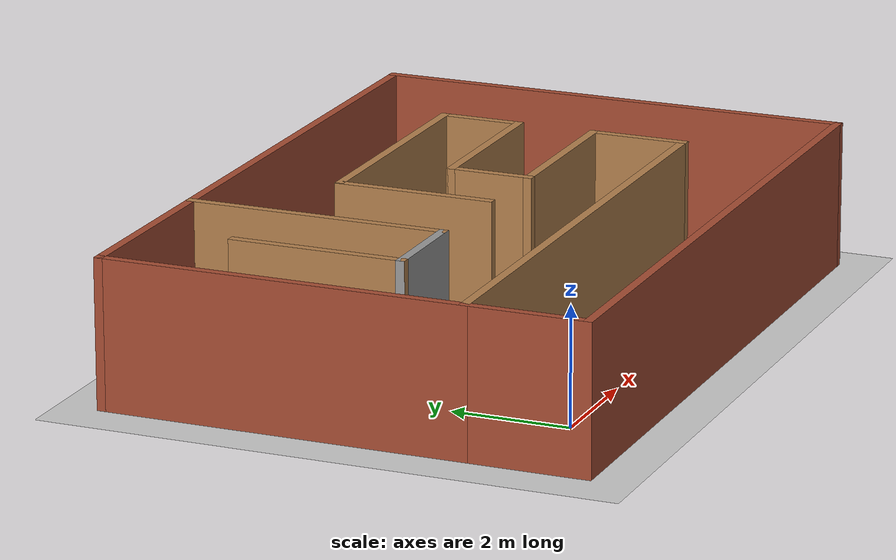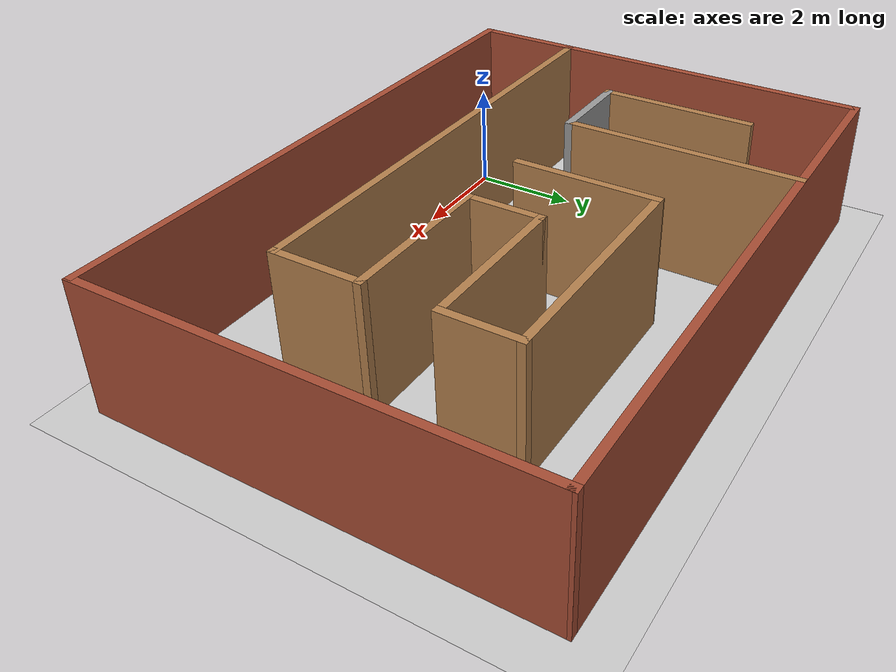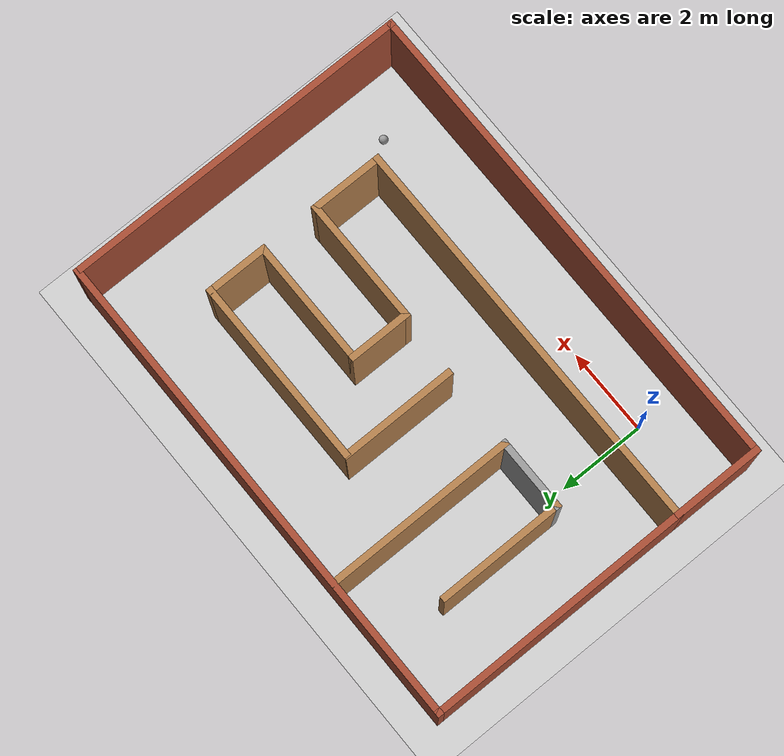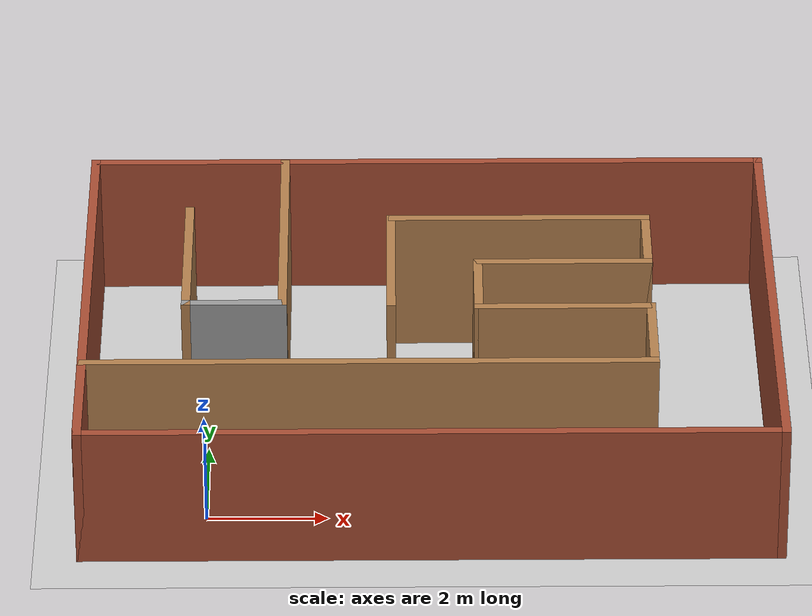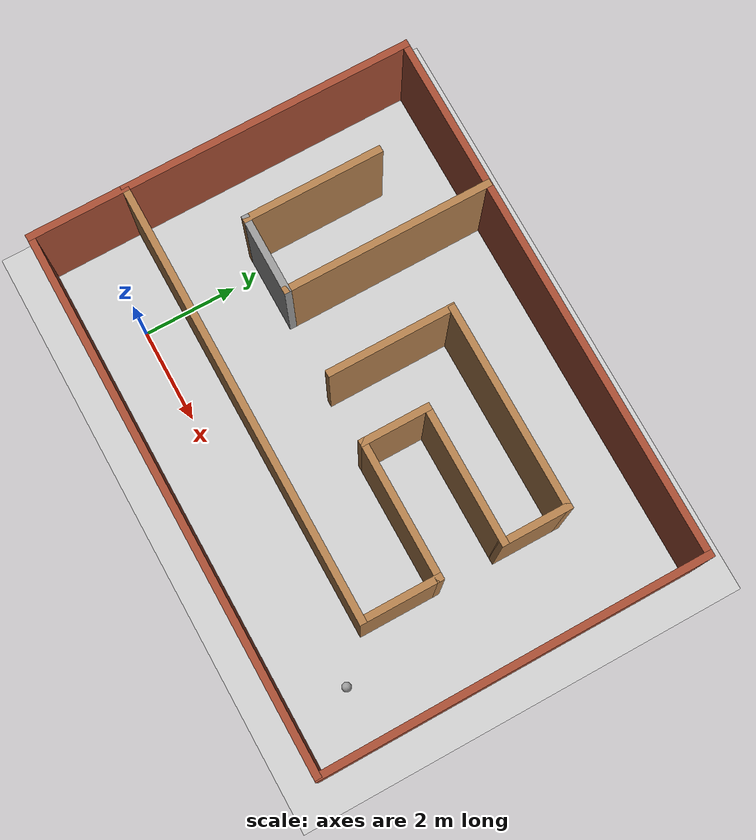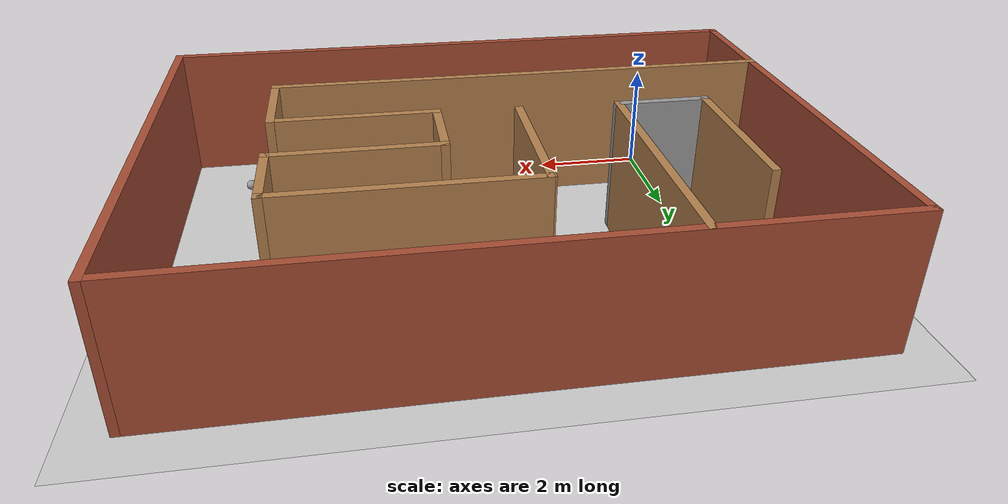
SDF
<sdf version="1.6">
 <world name="default">
  <light name="sun" type="directional">
   <pose>0 0 10 0 -0 0</pose>
   <diffuse>0.8 0.8 0.8 1</diffuse>
   <specular>0.1 0.1 0.1 1</specular>
   <attenuation>
    <range>1000</range>
    <constant>0.9</constant>
    <linear>0.01</linear>
    <quadratic>0.001</quadratic>
   </attenuation>
   <direction>-0.5 0.5 -1</direction>
  </light>
  <model name="ground_plane">
   <static>1</static>
   <link name="link">
    <collision name="collision">
     <geometry><plane><normal>0 0 1</normal><size>100 100</size></plane></geometry>
     <surface><friction><ode><mu>100</mu><mu2>50</mu2></ode></friction></surface>
    </collision>
    <visual name="visual">
     <cast_shadows>0</cast_shadows>
     <geometry><plane><normal>0 0 1</normal><size>100 100</size></plane></geometry>
     <material>
      <script><uri>file://media/materials/scripts/gazebo.material</uri><name>Gazebo/Grey</name></script>
     </material>
    </visual>
   </link>
  </model>
  <gravity>0 0 -9.8</gravity>
  <magnetic_field>6e-06 2.3e-05 -4.2e-05</magnetic_field>
  <atmosphere type="adiabatic"/>
  <physics name="default_physics" default="0" type="ode">
   <max_step_size>0.001</max_step_size>
   <real_time_factor>1</real_time_factor>
   <real_time_update_rate>1000</real_time_update_rate>
  </physics>
  <scene><ambient>0.4 0.4 0.4 1</ambient><background>0.7 0.7 0.7 1</background><shadows>1</shadows></scene>
  <spherical_coordinates>
   <surface_model>EARTH_WGS84</surface_model>
   <latitude_deg>0</latitude_deg>
   <longitude_deg>0</longitude_deg>
   <elevation>0</elevation>
   <heading_deg>0</heading_deg>
  </spherical_coordinates>
  <model name="maze">
   <pose>3.68088 2.96887 0 0 -0 0</pose>
   <link name="Wall_1">
    <collision name="Wall_1_Collision">
     <geometry><box><size>11.5 0.15 2.5</size></box></geometry>
     <pose>0 0 1.25 0 -0 0</pose>
    </collision>
    <visual name="Wall_1_Visual">
     <pose>0 0 1.25 0 -0 0</pose>
     <geometry><box><size>11.5 0.15 2.5</size></box></geometry>
     <material>
      <script><uri>file://media/materials/scripts/gazebo.material</uri><name>Gazebo/Bricks</name></script>
      <ambient>1 1 1 1</ambient>
     </material>
     <meta><layer>0</layer></meta>
    </visual>
    <pose>-0.015139 -4.055 0 0 -0 0</pose>
   </link>
   <link name="Wall_10">
    <collision name="Wall_10_Collision">
     <geometry><box><size>1.5 0.15 2.5</size></box></geometry>
     <pose>0 0 1.25 0 -0 0</pose>
    </collision>
    <visual name="Wall_10_Visual">
     <pose>0 0 1.25 0 -0 0</pose>
     <geometry><box><size>1.5 0.15 2.5</size></box></geometry>
     <material>
      <script><uri>file://media/materials/scripts/gazebo.material</uri><name>Gazebo/Wood</name></script>
      <ambient>1 1 1 1</ambient>
     </material>
     <meta><layer>0</layer></meta>
    </visual>
    <pose>3.65986 1.58 0 0 -0 1.5708</pose>
   </link>
   <link name="Wall_11">
    <collision name="Wall_11_Collision">
     <geometry><box><size>4.42 0.15 2.5</size></box></geometry>
     <pose>0 0 1.25 0 -0 0</pose>
    </collision>
    <visual name="Wall_11_Visual">
     <pose>0 0 1.25 0 -0 0</pose>
     <geometry><box><size>4.42 0.15 2.5</size></box></geometry>
     <material>
      <script><uri>file://media/materials/scripts/gazebo.material</uri><name>Gazebo/Wood</name></script>
      <ambient>1 1 1 1</ambient>
     </material>
     <meta><layer>0</layer></meta>
    </visual>
    <pose>1.52486 2.255 0 0 -0 3.14159</pose>
   </link>
   <link name="Wall_12">
    <collision name="Wall_12_Collision">
     <geometry><box><size>2.75 0.15 2.5</size></box></geometry>
     <pose>0 0 1.25 0 -0 0</pose>
    </collision>
    <visual name="Wall_12_Visual">
     <pose>0 0 1.25 0 -0 0</pose>
     <geometry><box><size>2.75 0.15 2.5</size></box></geometry>
     <material>
      <script><uri>file://media/materials/scripts/gazebo.material</uri><name>Gazebo/Wood</name></script>
      <ambient>1 1 1 1</ambient>
     </material>
     <meta><layer>0</layer></meta>
    </visual>
    <pose>-0.640139 0.955 0 0 0 -1.5708</pose>
   </link>
   <link name="Wall_14">
    <collision name="Wall_14_Collision">
     <geometry><box><size>4.5 0.15 2.5</size></box></geometry>
     <pose>0 0 1.25 0 -0 0</pose>
    </collision>
    <visual name="Wall_14_Visual">
     <pose>0 0 1.25 0 -0 0</pose>
     <geometry><box><size>4.5 0.15 2.5</size></box></geometry>
     <material>
      <script><uri>file://media/materials/scripts/gazebo.material</uri><name>Gazebo/Wood</name></script>
      <ambient>1 1 1 1</ambient>
     </material>
     <meta><layer>0</layer></meta>
    </visual>
    <pose>-2.44014 1.87 0 0 0 -1.5708</pose>
   </link>
   <link name="Wall_15">
    <collision name="Wall_15_Collision">
     <geometry><box><size>1.75 0.15 2.5</size></box></geometry>
     <pose>0 0 1.25 0 -0 0</pose>
    </collision>
    <visual name="Wall_15_Visual">
     <pose>0 0 1.25 0 -0 0</pose>
     <geometry><box><size>1.75 0.15 2.5</size></box></geometry>
     <material>
      <script><uri>file://media/materials/scripts/gazebo.material</uri><name>Gazebo/Grey</name></script>
      <ambient>1 1 1 1</ambient>
     </material>
     <meta><layer>0</layer></meta>
    </visual>
    <pose>-3.24014 -0.305001 0 0 -0 3.14159</pose>
   </link>
   <link name="Wall_16">
    <collision name="Wall_16_Collision">
     <geometry><box><size>3 0.15 2.5</size></box></geometry>
     <pose>0 0 1.25 0 -0 0</pose>
    </collision>
    <visual name="Wall_16_Visual">
     <pose>0 0 1.25 0 -0 0</pose>
     <geometry><box><size>3 0.15 2.5</size></box></geometry>
     <material>
      <script><uri>file://media/materials/scripts/gazebo.material</uri><name>Gazebo/Wood</name></script>
      <ambient>1 1 1 1</ambient>
     </material>
     <meta><layer>0</layer></meta>
    </visual>
    <pose>-4.04014 1.12 0 0 -0 1.5708</pose>
   </link>
   <link name="Wall_18">
    <collision name="Wall_18_Collision">
     <geometry><box><size>2.16 0.15 2.5</size></box></geometry>
     <pose>0 0 1.25 0 -0 0</pose>
    </collision>
    <visual name="Wall_18_Visual">
     <pose>0 0 1.25 0 -0 0</pose>
     <geometry><box><size>2.16 0.15 2.5</size></box></geometry>
     <material>
      <script><uri>file://media/materials/scripts/gazebo.material</uri><name>Gazebo/Bricks</name></script>
      <ambient>1 1 1 1</ambient>
     </material>
     <meta><layer>0</layer></meta>
    </visual>
    <pose>-5.69014 -3.05 0 0 0 -1.5708</pose>
   </link>
   <link name="Wall_2">
    <collision name="Wall_2_Collision">
     <geometry><box><size>8.2605 0.15 2.5</size></box></geometry>
     <pose>0 0 1.25 0 -0 0</pose>
    </collision>
    <visual name="Wall_2_Visual">
     <pose>0 0 1.25 0 -0 0</pose>
     <geometry><box><size>8.2605 0.15 2.5</size></box></geometry>
     <material>
      <script><uri>file://media/materials/scripts/gazebo.material</uri><name>Gazebo/Bricks</name></script>
      <ambient>1 1 1 1</ambient>
     </material>
     <meta><layer>0</layer></meta>
    </visual>
    <pose>5.67486 0 0 0 -0 1.57449</pose>
   </link>
   <link name="Wall_3">
    <collision name="Wall_3_Collision">
     <geometry><box><size>11.5 0.15 2.5</size></box></geometry>
     <pose>0 0 1.25 0 -0 0</pose>
    </collision>
    <visual name="Wall_3_Visual">
     <pose>0 0 1.25 0 -0 0</pose>
     <geometry><box><size>11.5 0.15 2.5</size></box></geometry>
     <material>
      <script><uri>file://media/materials/scripts/gazebo.material</uri><name>Gazebo/Bricks</name></script>
      <ambient>1 1 1 1</ambient>
     </material>
     <meta><layer>0</layer></meta>
    </visual>
    <pose>-0.015139 4.055 0 0 -0 3.14159</pose>
   </link>
   <link name="Wall_4">
    <collision name="Wall_4_Collision">
     <geometry><box><size>6.25 0.15 2.5</size></box></geometry>
     <pose>0 0 1.25 0 -0 0</pose>
    </collision>
    <visual name="Wall_4_Visual">
     <pose>0 0 1.25 0 -0 0</pose>
     <geometry><box><size>6.25 0.15 2.5</size></box></geometry>
     <material>
      <script><uri>file://media/materials/scripts/gazebo.material</uri><name>Gazebo/Bricks</name></script>
      <ambient>1 1 1 1</ambient>
     </material>
     <meta><layer>0</layer></meta>
    </visual>
    <pose>-5.69014 1.005 0 0 0 -1.5708</pose>
   </link>
   <link name="Wall_5">
    <collision name="Wall_5_Collision">
     <geometry><box><size>9.5 0.15 2.5</size></box></geometry>
     <pose>0 0 1.25 0 -0 0</pose>
    </collision>
    <visual name="Wall_5_Visual">
     <pose>0 0 1.25 0 -0 0</pose>
     <geometry><box><size>9.5 0.15 2.5</size></box></geometry>
     <material>
      <script><uri>file://media/materials/scripts/gazebo.material</uri><name>Gazebo/Wood</name></script>
      <ambient>1 1 1 1</ambient>
     </material>
     <meta><layer>0</layer></meta>
    </visual>
    <pose>-1.01514 -2.045 0 0 -0 0</pose>
   </link>
   <link name="Wall_6">
    <collision name="Wall_6_Collision">
     <geometry><box><size>1.75 0.15 2.5</size></box></geometry>
     <pose>0 0 1.25 0 -0 0</pose>
    </collision>
    <visual name="Wall_6_Visual">
     <pose>0 0 1.25 0 -0 0</pose>
     <geometry><box><size>1.75 0.15 2.5</size></box></geometry>
     <material>
      <script><uri>file://media/materials/scripts/gazebo.material</uri><name>Gazebo/Wood</name></script>
      <ambient>1 1 1 1</ambient>
     </material>
     <meta><layer>0</layer></meta>
    </visual>
    <pose>3.65986 -1.245 0 0 -0 1.5708</pose>
   </link>
   <link name="Wall_7">
    <collision name="Wall_7_Collision">
     <geometry><box><size>3 0.15 2.5</size></box></geometry>
     <pose>0 0 1.25 0 -0 0</pose>
    </collision>
    <visual name="Wall_7_Visual">
     <pose>0 0 1.25 0 -0 0</pose>
     <geometry><box><size>3 0.15 2.5</size></box></geometry>
     <material>
      <script><uri>file://media/materials/scripts/gazebo.material</uri><name>Gazebo/Wood</name></script>
      <ambient>1 1 1 1</ambient>
     </material>
     <meta><layer>0</layer></meta>
    </visual>
    <pose>2.23486 -0.445 0 0 -0 3.14159</pose>
   </link>
   <link name="Wall_8">
    <collision name="Wall_8_Collision">
     <geometry><box><size>1.5 0.15 2.5</size></box></geometry>
     <pose>0 0 1.25 0 -0 0</pose>
    </collision>
    <visual name="Wall_8_Visual">
     <pose>0 0 1.25 0 -0 0</pose>
     <geometry><box><size>1.5 0.15 2.5</size></box></geometry>
     <material>
      <script><uri>file://media/materials/scripts/gazebo.material</uri><name>Gazebo/Wood</name></script>
      <ambient>1 1 1 1</ambient>
     </material>
     <meta><layer>0</layer></meta>
    </visual>
    <pose>0.809861 0.23 0 0 -0 1.5708</pose>
   </link>
   <link name="Wall_9">
    <collision name="Wall_9_Collision">
     <geometry><box><size>3 0.15 2.5</size></box></geometry>
     <pose>0 0 1.25 0 -0 0</pose>
    </collision>
    <visual name="Wall_9_Visual">
     <pose>0 0 1.25 0 -0 0</pose>
     <geometry><box><size>3 0.15 2.5</size></box></geometry>
     <material>
      <script><uri>file://media/materials/scripts/gazebo.material</uri><name>Gazebo/Wood</name></script>
      <ambient>1 1 1 1</ambient>
     </material>
     <meta><layer>0</layer></meta>
    </visual>
    <pose>2.23486 0.905 0 0 -0 0</pose>
   </link>
   <static>1</static>
  </model>
  <model name="my_ball">
   <link name="link_0">
    <inertial>
     <mass>1</mass>
     <inertia><ixx>0.1</ixx><ixy>0</ixy><ixz>0</ixz><iyy>0.1</iyy><iyz>0</iyz><izz>0.1</izz></inertia>
    </inertial>
    <visual name="visual">
     <geometry><sphere><radius>0.1</radius></sphere></geometry>
     <material>
      <lighting>1</lighting>
      <script><uri>file://media/materials/scripts/gazebo.material</uri><name>Gazebo/Grey</name></script>
      <shader type="pixel"><normal_map>__default__</normal_map></shader>
      <ambient>1 1 1 1</ambient>
      <diffuse>1 1 1 1</diffuse>
      <specular>1 1 1 1</specular>
      <emissive>1 1 1 1</emissive>
     </material>
    </visual>
    <collision name="collision">
     <geometry><sphere><radius>0.1</radius></sphere></geometry>
     <surface>
      <friction>
       <ode><mu>1</mu><mu2>1</mu2><fdir1>0 0 0</fdir1><slip1>0</slip1><slip2>0</slip2></ode>
       <torsional>
        <coefficient>1</coefficient>
        <patch_radius>0</patch_radius>
        <surface_radius>0</surface_radius>
        <use_patch_radius>1</use_patch_radius>
        <ode><slip>0</slip></ode>
       </torsional>
      </friction>
      <bounce><restitution_coefficient>0</restitution_coefficient><threshold>1e+06</threshold></bounce>
      <contact>
       <collide_without_contact>0</collide_without_contact>
       <collide_without_contact_bitmask>1</collide_without_contact_bitmask>
       <collide_bitmask>1</collide_bitmask>
       <ode>
        <soft_cfm>0</soft_cfm>
        <soft_erp>0.2</soft_erp>
        <kp>1e+13</kp>
        <kd>1</kd>
        <max_vel>0.01</max_vel>
        <min_depth>0</min_depth>
       </ode>
       <bullet>
        <split_impulse>1</split_impulse>
        <split_impulse_penetration_threshold>-0.01</split_impulse_penetration_threshold>
        <soft_cfm>0</soft_cfm>
        <soft_erp>0.2</soft_erp>
        <kp>1e+13</kp>
        <kd>1</kd>
       </bullet>
      </contact>
     </surface>
    </collision>
   </link>
   <static>0</static>
   <pose>8.12485 0.16089 0.1 0 -0 0</pose>
  </model>
 </world>
</sdf>
